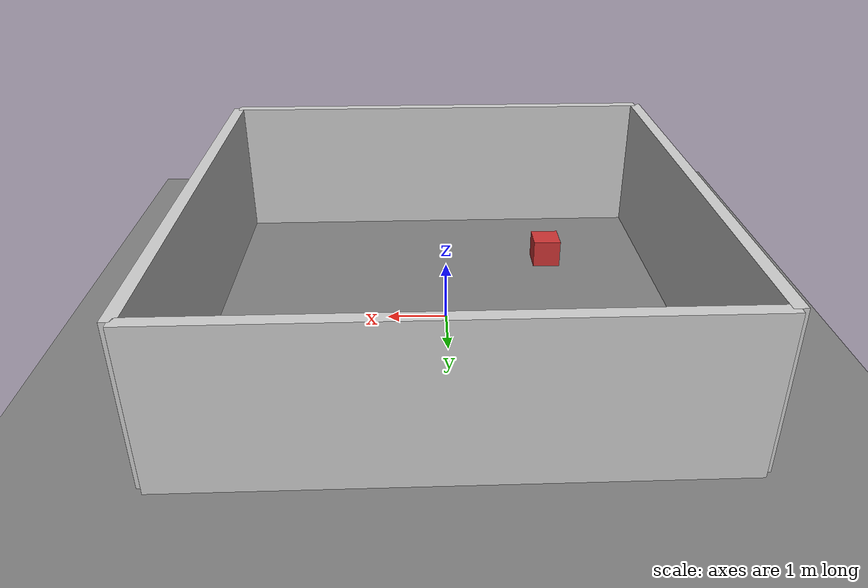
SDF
<?xml version="1.0"?>
<!--
  简单的办公室环境世界
  包含：地面、光照、物理引擎配置
-->
<sdf version="1.6">
  <world name="simple_office">
    <!-- 物理引擎配置 -->
    <physics type="ode">
      <max_step_size>0.001</max_step_size>
      <real_time_factor>1.0</real_time_factor>
      <real_time_update_rate>1000</real_time_update_rate>
      <ode>
        <solver>
          <type>quick</type>
          <iters>10</iters>
          <sor>1.3</sor>
        </solver>
      </ode>
    </physics>

    <!-- 光照 -->
    <light name="sun" type="directional">
      <cast_shadows>1</cast_shadows>
      <pose>0 0 10 0 0 0</pose>
      <diffuse>0.8 0.8 0.8 1</diffuse>
      <specular>0.2 0.2 0.2 1</specular>
      <direction>-0.5 0.5 -1</direction>
      <attenuation>
        <range>1000</range>
        <linear>0.0</linear>
        <quadratic>0.0</quadratic>
      </attenuation>
    </light>

    <!-- 地面 -->
    <model name="ground_plane">
      <static>true</static>
      <link name="ground_plane_link">
        <collision name="ground_plane_collision">
          <geometry>
            <box>
              <size>100 100 0.1</size>
            </box>
          </geometry>
        </collision>
        <visual name="ground_plane_visual">
          <geometry>
            <box>
              <size>100 100 0.1</size>
            </box>
          </geometry>
          <material>
            <ambient>0.5 0.5 0.5 1</ambient>
            <diffuse>0.5 0.5 0.5 1</diffuse>
          </material>
        </visual>
      </link>
      <pose>0 0 -0.05 0 0 0</pose>
    </model>

    <!-- 办公室墙壁 -->
    <model name="wall_1">
      <static>true</static>
      <link name="wall_1_link">
        <collision name="wall_1_collision">
          <geometry>
            <box>
              <size>8 0.2 2.5</size>
            </box>
          </geometry>
        </collision>
        <visual name="wall_1_visual">
          <geometry>
            <box>
              <size>8 0.2 2.5</size>
            </box>
          </geometry>
          <material>
            <ambient>0.8 0.8 0.8 1</ambient>
            <diffuse>0.8 0.8 0.8 1</diffuse>
          </material>
        </visual>
      </link>
      <pose>0 -4 1.25 0 0 0</pose>
    </model>

    <model name="wall_2">
      <static>true</static>
      <link name="wall_2_link">
        <collision name="wall_2_collision">
          <geometry>
            <box>
              <size>8 0.2 2.5</size>
            </box>
          </geometry>
        </collision>
        <visual name="wall_2_visual">
          <geometry>
            <box>
              <size>8 0.2 2.5</size>
            </box>
          </geometry>
          <material>
            <ambient>0.8 0.8 0.8 1</ambient>
            <diffuse>0.8 0.8 0.8 1</diffuse>
          </material>
        </visual>
      </link>
      <pose>0 4 1.25 0 0 0</pose>
    </model>

    <model name="wall_3">
      <static>true</static>
      <link name="wall_3_link">
        <collision name="wall_3_collision">
          <geometry>
            <box>
              <size>0.2 8 2.5</size>
            </box>
          </geometry>
        </collision>
        <visual name="wall_3_visual">
          <geometry>
            <box>
              <size>0.2 8 2.5</size>
            </box>
          </geometry>
          <material>
            <ambient>0.8 0.8 0.8 1</ambient>
            <diffuse>0.8 0.8 0.8 1</diffuse>
          </material>
        </visual>
      </link>
      <pose>-4 0 1.25 0 0 0</pose>
    </model>

    <model name="wall_4">
      <static>true</static>
      <link name="wall_4_link">
        <collision name="wall_4_collision">
          <geometry>
            <box>
              <size>0.2 8 2.5</size>
            </box>
          </geometry>
        </collision>
        <visual name="wall_4_visual">
          <geometry>
            <box>
              <size>0.2 8 2.5</size>
            </box>
          </geometry>
          <material>
            <ambient>0.8 0.8 0.8 1</ambient>
            <diffuse>0.8 0.8 0.8 1</diffuse>
          </material>
        </visual>
      </link>
      <pose>4 0 1.25 0 0 0</pose>
    </model>

    <!-- 障碍物 -->
    <model name="box_1">
      <static>true</static>
      <link name="box_1_link">
        <collision name="box_1_collision">
          <geometry>
            <box>
              <size>0.5 0.5 0.5</size>
            </box>
          </geometry>
        </collision>
        <visual name="box_1_visual">
          <geometry>
            <box>
              <size>0.5 0.5 0.5</size>
            </box>
          </geometry>
          <material>
            <ambient>0.8 0.2 0.2 1</ambient>
            <diffuse>0.8 0.2 0.2 1</diffuse>
          </material>
        </visual>
      </link>
      <pose>-2 -2 0.25 0 0 0</pose>
    </model>

    <model name="box_2">
      <static>true</static>
      <link name="box_2_link">
        <collision name="box_2_collision">
          <geometry>
            <box>
              <size>0.8 0.3 0.8</size>
            </box>
          </geometry>
        </collision>
        <visual name="box_2_visual">
          <geometry>
            <box>
              <size>0.8 0.3 0.8</size>
            </box>
          </geometry>
          <material>
            <ambient>0.2 0.8 0.2 1</ambient>
            <diffuse>0.2 0.8 0.2 1</diffuse>
          </material>
        </visual>
      </link>
      <pose>1.5 2 0.4 0 0 0</pose>
    </model>

    <!-- 场景状态 -->
    <scene>
      <ambient>0.5 0.5 0.5 1</ambient>
      <background>0.7 0.7 0.7 1</background>
    </scene>

  </world>
</sdf>
